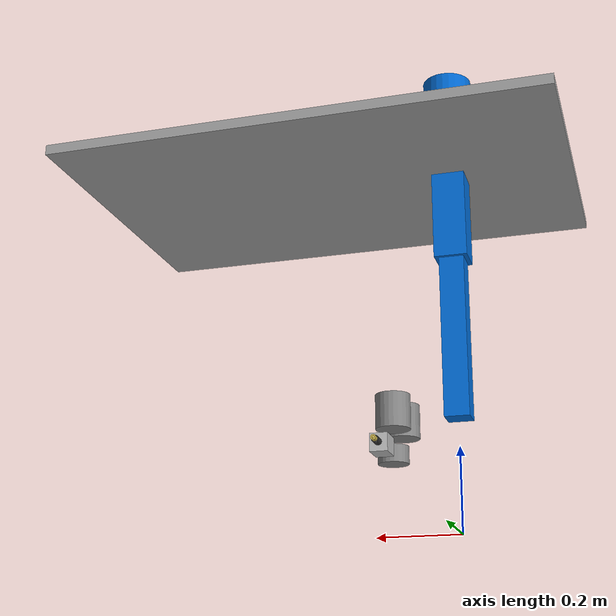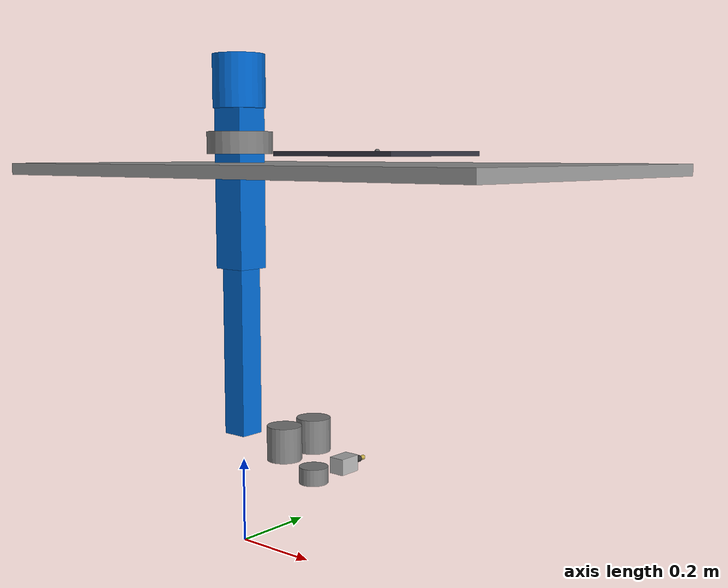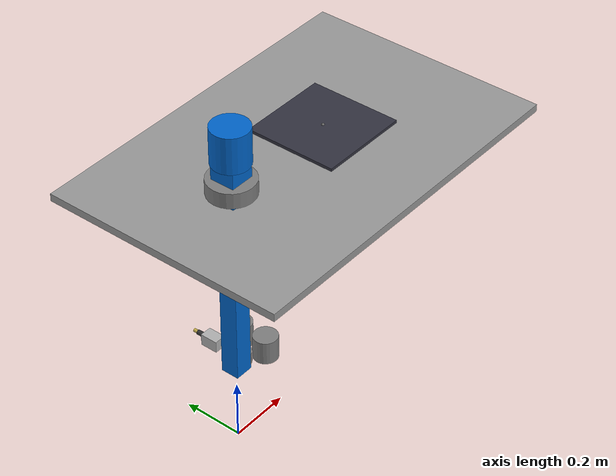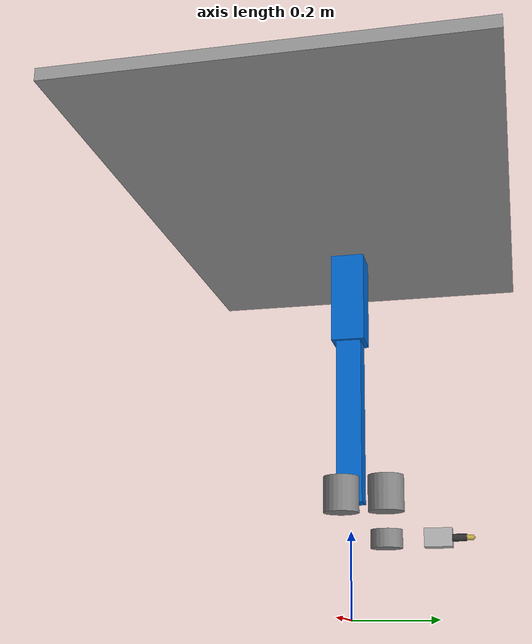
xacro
<?xml version="1.0"?>
<robot xmlns:xacro="http://www.ros.org/wiki/xacro" name="printer_standalone">
  <!--
    Standalone scene for testing without ur_description package.
    Uses simplified robot representation with FDM extruder and print bed.
  -->

  <!-- Include extruder and bed -->
  <xacro:include filename="$(find ur_3d_printer)/urdf/fdm_extruder.urdf.xacro"/>
  <xacro:include filename="$(find ur_3d_printer)/urdf/print_bed.urdf.xacro"/>

  <!-- World frame -->
  <link name="world"/>

  <!-- Table surface (simplified) -->
  <joint name="table_joint" type="fixed">
    <parent link="world"/>
    <child link="table_top"/>
    <origin xyz="0 0 0.9" rpy="0 0 0"/>
  </joint>

  <link name="table_top">
    <visual>
      <geometry>
        <box size="1.2 0.8 0.025"/>
      </geometry>
      <origin xyz="0.3 0 -0.0125" rpy="0 0 0"/>
      <material name="table_gray">
        <color rgba="0.6 0.6 0.6 1.0"/>
      </material>
    </visual>
  </link>

  <!-- Robot mount on table -->
  <joint name="robot_mount_joint" type="fixed">
    <parent link="table_top"/>
    <child link="robot_mount"/>
    <origin xyz="0 0 0" rpy="0 0 0"/>
  </joint>
  <link name="robot_mount"/>

  <!-- Simplified UR5e robot base -->
  <joint name="robot_base_joint" type="fixed">
    <parent link="robot_mount"/>
    <child link="base_link"/>
    <origin xyz="0 0 0.02" rpy="0 0 0"/>
  </joint>

  <link name="base_link">
    <visual>
      <geometry>
        <cylinder radius="0.075" length="0.05"/>
      </geometry>
      <origin xyz="0 0 0.025" rpy="0 0 0"/>
      <material name="ur_gray">
        <color rgba="0.5 0.5 0.5 1.0"/>
      </material>
    </visual>
  </link>

  <!-- Simplified arm -->
  <joint name="shoulder_pan_joint" type="revolute">
    <parent link="base_link"/>
    <child link="shoulder_link"/>
    <origin xyz="0 0 0.1625" rpy="0 0 0"/>
    <axis xyz="0 0 1"/>
    <limit lower="-6.28" upper="6.28" effort="150" velocity="3.14"/>
  </joint>

  <link name="shoulder_link">
    <visual>
      <geometry>
        <cylinder radius="0.06" length="0.12"/>
      </geometry>
      <material name="ur_blue">
        <color rgba="0.0 0.4 0.8 1.0"/>
      </material>
    </visual>
  </link>

  <joint name="shoulder_lift_joint" type="revolute">
    <parent link="shoulder_link"/>
    <child link="upper_arm_link"/>
    <origin xyz="0 0 0" rpy="0 1.5708 0"/>
    <axis xyz="0 1 0"/>
    <limit lower="-6.28" upper="6.28" effort="150" velocity="3.14"/>
  </joint>

  <link name="upper_arm_link">
    <visual>
      <geometry>
        <box size="0.425 0.08 0.08"/>
      </geometry>
      <origin xyz="0.2125 0 0" rpy="0 0 0"/>
      <material name="ur_blue"/>
    </visual>
  </link>

  <joint name="elbow_joint" type="revolute">
    <parent link="upper_arm_link"/>
    <child link="forearm_link"/>
    <origin xyz="0.425 0 0" rpy="0 0 0"/>
    <axis xyz="0 1 0"/>
    <limit lower="-3.14" upper="3.14" effort="150" velocity="3.14"/>
  </joint>

  <link name="forearm_link">
    <visual>
      <geometry>
        <box size="0.3922 0.06 0.06"/>
      </geometry>
      <origin xyz="0.1961 0 0" rpy="0 0 0"/>
      <material name="ur_blue"/>
    </visual>
  </link>

  <joint name="wrist_1_joint" type="revolute">
    <parent link="forearm_link"/>
    <child link="wrist_1_link"/>
    <origin xyz="0.3922 0 0.1333" rpy="0 1.5708 0"/>
    <axis xyz="0 1 0"/>
    <limit lower="-6.28" upper="6.28" effort="28" velocity="3.14"/>
  </joint>

  <link name="wrist_1_link">
    <visual>
      <geometry>
        <cylinder radius="0.04" length="0.08"/>
      </geometry>
      <material name="ur_gray"/>
    </visual>
  </link>

  <joint name="wrist_2_joint" type="revolute">
    <parent link="wrist_1_link"/>
    <child link="wrist_2_link"/>
    <origin xyz="0 0.0997 0" rpy="0 0 0"/>
    <axis xyz="0 0 1"/>
    <limit lower="-6.28" upper="6.28" effort="28" velocity="3.14"/>
  </joint>

  <link name="wrist_2_link">
    <visual>
      <geometry>
        <cylinder radius="0.04" length="0.08"/>
      </geometry>
      <material name="ur_gray"/>
    </visual>
  </link>

  <joint name="wrist_3_joint" type="revolute">
    <parent link="wrist_2_link"/>
    <child link="wrist_3_link"/>
    <origin xyz="0 0 0.0996" rpy="0 0 0"/>
    <axis xyz="0 1 0"/>
    <limit lower="-6.28" upper="6.28" effort="28" velocity="3.14"/>
  </joint>

  <link name="wrist_3_link">
    <visual>
      <geometry>
        <cylinder radius="0.035" length="0.04"/>
      </geometry>
      <material name="ur_gray"/>
    </visual>
  </link>

  <!-- Tool flange -->
  <joint name="tool0_joint" type="fixed">
    <parent link="wrist_3_link"/>
    <child link="tool0"/>
    <origin xyz="0 0.0823 0" rpy="-1.5708 0 0"/>
  </joint>

  <link name="tool0"/>

  <!-- FDM Extruder attached to tool0 -->
  <xacro:fdm_extruder parent="tool0" prefix=""/>

  <!-- Print bed -->
  <xacro:print_bed parent="world" prefix="" x="0.4" y="0.0" z="0.925"/>

</robot>

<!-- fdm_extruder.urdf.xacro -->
<robot xmlns:xacro="http://www.ros.org/wiki/xacro" name="fdm_extruder">

  <xacro:arg name="standalone" default="false"/>

  <!-- FDM Extruder Parameters -->
  <xacro:property name="heatsink_length" value="0.04"/>
  <xacro:property name="heatsink_width" value="0.04"/>
  <xacro:property name="heatsink_height" value="0.06"/>
  <xacro:property name="heatbreak_length" value="0.03"/>
  <xacro:property name="heatbreak_radius" value="0.008"/>
  <xacro:property name="nozzle_length" value="0.015"/>
  <xacro:property name="nozzle_radius" value="0.006"/>
  <xacro:property name="total_length" value="0.105"/>  <!-- heatsink + heatbreak + nozzle -->

  <!-- Materials -->
  <material name="extruder_aluminum">
    <color rgba="0.7 0.7 0.7 1.0"/>
  </material>

  <material name="extruder_brass">
    <color rgba="0.8 0.7 0.3 1.0"/>
  </material>

  <material name="extruder_dark">
    <color rgba="0.2 0.2 0.2 1.0"/>
  </material>

  <xacro:macro name="fdm_extruder" params="parent prefix:=''">

    <!-- Extruder mount (fixed to tool0, aligned along tool Z-axis) -->
    <joint name="${prefix}extruder_base_joint" type="fixed">
      <origin xyz="0 0 0" rpy="0 0 0"/>
      <parent link="${parent}"/>
      <child link="${prefix}extruder_heatsink"/>
    </joint>

    <!-- Heatsink body -->
    <link name="${prefix}extruder_heatsink">
      <visual>
        <geometry>
          <box size="${heatsink_width} ${heatsink_width} ${heatsink_height}"/>
        </geometry>
        <origin xyz="0 0 ${heatsink_height/2}" rpy="0 0 0"/>
        <material name="extruder_aluminum"/>
      </visual>
      <collision>
        <geometry>
          <box size="${heatsink_width} ${heatsink_width} ${heatsink_height}"/>
        </geometry>
        <origin xyz="0 0 ${heatsink_height/2}" rpy="0 0 0"/>
      </collision>
      <inertial>
        <mass value="0.3"/>
        <origin xyz="0 0 ${heatsink_height/2}" rpy="0 0 0"/>
        <inertia ixx="0.001" ixy="0" ixz="0" iyy="0.001" iyz="0" izz="0.001"/>
      </inertial>
    </link>

    <!-- Heatbreak -->
    <joint name="${prefix}heatbreak_joint" type="fixed">
      <parent link="${prefix}extruder_heatsink"/>
      <child link="${prefix}extruder_heatbreak"/>
      <origin xyz="0 0 ${heatsink_height}" rpy="0 0 0"/>
    </joint>

    <link name="${prefix}extruder_heatbreak">
      <visual>
        <geometry>
          <cylinder radius="${heatbreak_radius}" length="${heatbreak_length}"/>
        </geometry>
        <origin xyz="0 0 ${heatbreak_length/2}" rpy="0 0 0"/>
        <material name="extruder_dark"/>
      </visual>
      <collision>
        <geometry>
          <cylinder radius="${heatbreak_radius}" length="${heatbreak_length}"/>
        </geometry>
        <origin xyz="0 0 ${heatbreak_length/2}" rpy="0 0 0"/>
      </collision>
      <inertial>
        <mass value="0.05"/>
        <origin xyz="0 0 ${heatbreak_length/2}" rpy="0 0 0"/>
        <inertia ixx="0.0001" ixy="0" ixz="0" iyy="0.0001" iyz="0" izz="0.0001"/>
      </inertial>
    </link>

    <!-- Nozzle -->
    <joint name="${prefix}nozzle_joint" type="fixed">
      <parent link="${prefix}extruder_heatbreak"/>
      <child link="${prefix}extruder_nozzle"/>
      <origin xyz="0 0 ${heatbreak_length}" rpy="0 0 0"/>
    </joint>

    <link name="${prefix}extruder_nozzle">
      <visual>
        <geometry>
          <cylinder radius="${nozzle_radius}" length="${nozzle_length}"/>
        </geometry>
        <origin xyz="0 0 ${nozzle_length/2}" rpy="0 0 0"/>
        <material name="extruder_brass"/>
      </visual>
      <collision>
        <geometry>
          <cylinder radius="${nozzle_radius}" length="${nozzle_length}"/>
        </geometry>
        <origin xyz="0 0 ${nozzle_length/2}" rpy="0 0 0"/>
      </collision>
      <inertial>
        <mass value="0.02"/>
        <origin xyz="0 0 ${nozzle_length/2}" rpy="0 0 0"/>
        <inertia ixx="0.00001" ixy="0" ixz="0" iyy="0.00001" iyz="0" izz="0.00001"/>
      </inertial>
    </link>

    <!-- Nozzle TCP (Tool Center Point at nozzle tip) -->
    <joint name="${prefix}nozzle_tcp_joint" type="fixed">
      <parent link="${prefix}extruder_nozzle"/>
      <child link="${prefix}nozzle_tcp"/>
      <origin xyz="0 0 ${nozzle_length}" rpy="0 0 0"/>
    </joint>

    <link name="${prefix}nozzle_tcp">
      <visual>
        <geometry>
          <sphere radius="0.003"/>
        </geometry>
        <material name="extruder_brass"/>
      </visual>
    </link>

  </xacro:macro>

  <!-- Standalone instantiation -->
  <xacro:if value="$(arg standalone)">
    <link name="extruder_mount"/>
    <xacro:fdm_extruder parent="extruder_mount" prefix=""/>
  </xacro:if>

</robot>

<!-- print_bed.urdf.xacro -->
<robot xmlns:xacro="http://www.ros.org/wiki/xacro" name="print_bed">

  <xacro:arg name="standalone" default="false"/>

  <!-- Print Bed Parameters -->
  <xacro:arg name="bed_width" default="0.3"/>      <!-- X dimension (m) -->
  <xacro:arg name="bed_depth" default="0.3"/>      <!-- Y dimension (m) -->
  <xacro:arg name="bed_thickness" default="0.01"/> <!-- Z thickness (m) -->

  <xacro:property name="bed_w" value="$(arg bed_width)"/>
  <xacro:property name="bed_d" value="$(arg bed_depth)"/>
  <xacro:property name="bed_t" value="$(arg bed_thickness)"/>

  <!-- Materials -->
  <material name="bed_surface">
    <color rgba="0.2 0.2 0.25 1.0"/>
  </material>

  <material name="bed_frame">
    <color rgba="0.4 0.4 0.4 1.0"/>
  </material>

  <xacro:macro name="print_bed" params="parent prefix:='' x:=0.4 y:=0.0 z:=0.92">

    <!-- Bed mount to world/table -->
    <joint name="${prefix}print_bed_joint" type="fixed">
      <parent link="${parent}"/>
      <child link="${prefix}print_bed_surface"/>
      <origin xyz="${x} ${y} ${z}" rpy="0 0 0"/>
    </joint>

    <!-- Bed surface -->
    <link name="${prefix}print_bed_surface">
      <visual>
        <geometry>
          <box size="${bed_w} ${bed_d} ${bed_t}"/>
        </geometry>
        <origin xyz="0 0 ${-bed_t/2}" rpy="0 0 0"/>
        <material name="bed_surface"/>
      </visual>
      <collision>
        <geometry>
          <box size="${bed_w} ${bed_d} ${bed_t}"/>
        </geometry>
        <origin xyz="0 0 ${-bed_t/2}" rpy="0 0 0"/>
      </collision>
      <inertial>
        <mass value="2.0"/>
        <origin xyz="0 0 ${-bed_t/2}" rpy="0 0 0"/>
        <inertia ixx="0.01" ixy="0" ixz="0" iyy="0.01" iyz="0" izz="0.01"/>
      </inertial>
    </link>

    <!-- Print origin frame (top surface center - where G-code 0,0,0 maps) -->
    <joint name="${prefix}print_origin_joint" type="fixed">
      <parent link="${prefix}print_bed_surface"/>
      <child link="${prefix}print_origin"/>
      <origin xyz="0 0 0" rpy="0 0 0"/>
    </joint>

    <link name="${prefix}print_origin">
      <!-- Visual marker for origin -->
      <visual>
        <geometry>
          <sphere radius="0.005"/>
        </geometry>
        <material name="bed_frame"/>
      </visual>
    </link>

  </xacro:macro>

  <!-- Standalone instantiation -->
  <xacro:if value="$(arg standalone)">
    <link name="world"/>
    <xacro:print_bed parent="world" prefix=""/>
  </xacro:if>

</robot>
